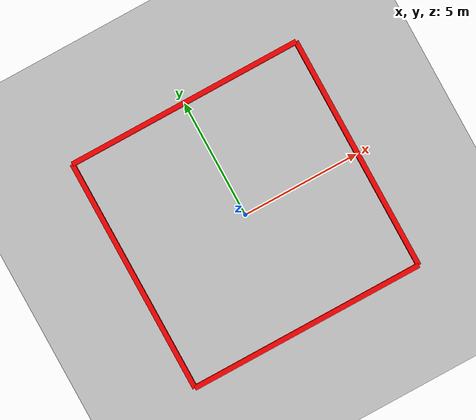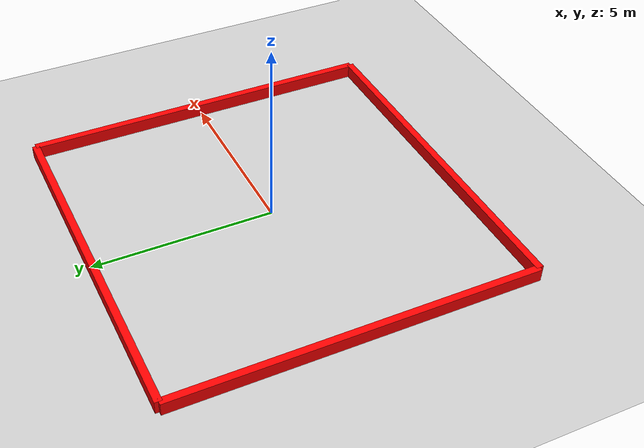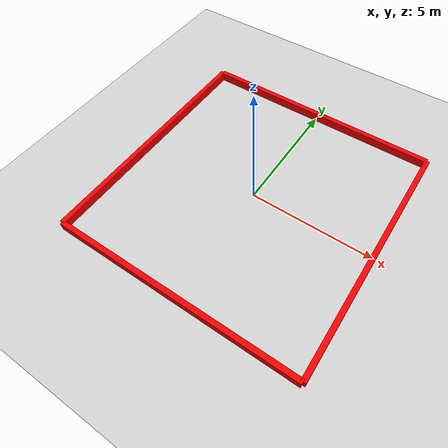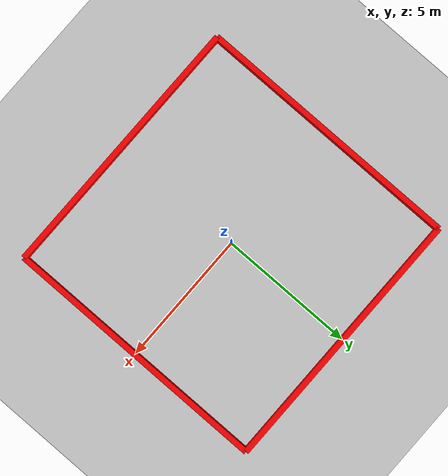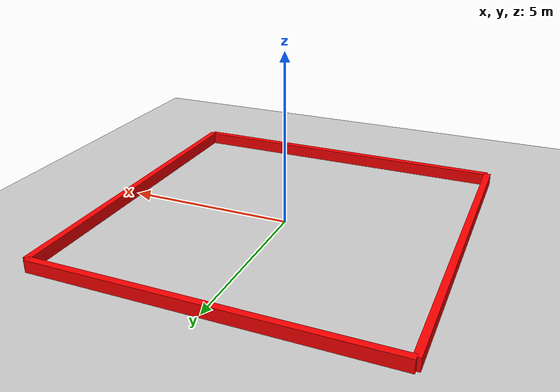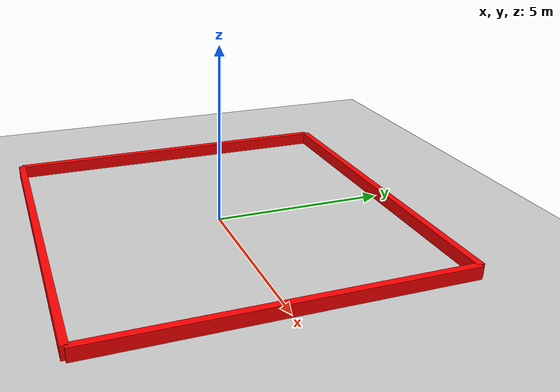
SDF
<?xml version="1.0" ?>
<sdf version="1.4">
  <world name="default">

    <!-- A global light source -->
    <include>
      <uri>model://sun</uri>
    </include>

    <!-- A ground plane -->
    <include>
      <uri>model://ground_plane</uri>
    </include>
<model name= "wall">
  	<pose>0.0 5.0 0.0 0 0 0</pose>

	<link name ="link">
<collision name ="collision">
	<geometry>
	<box>
		<size>10.0 0.2 0.7</size>
	</box>
	</geometry>
	</collision>
<visual name= "visual">
	<geometry>
	<box>
		<size>10.0 0.2 0.7</size>
	</box>
	</geometry>

<material>
<ambient>1 0 0 1</ambient>
<diffuse>1 0 0 1</diffuse>
<specular>0.1 0.1 0.1 1</specular>
<emissive>0 0 0 0</emissive>
</material>
</visual>
</link>
</model>

<model name= "wall1">
  	<pose>0.0 -5.0 0.0 0 0 0</pose>

	<link name ="link">
<collision name ="collision">
	<geometry>
	<box>
		<size>10.0 0.2 0.7</size>
	</box>
	</geometry>
	</collision>
<visual name= "visual">
	<geometry>
	<box>
		<size>10.0 0.2 0.7</size>
	</box>
	</geometry>

<material>
<ambient>1 0 0 1</ambient>
<diffuse>1 0 0 1</diffuse>
<specular>0.1 0.1 0.1 1</specular>
<emissive>0 0 0 0</emissive>
</material>
</visual>
</link>
</model>

<model name= "wall2">
  	<pose>-5.0 0.0 0.0 0 0 1.5708</pose>

	<link name ="link">
<collision name ="collision">
	<geometry>
	<box>
		<size>10.0 0.2 0.7</size>
	</box>
	</geometry>
	</collision>
<visual name= "visual">
	<geometry>
	<box>
		<size>10.0 0.2 0.7</size>
	</box>
	</geometry>

<material>
<ambient>1 0 0 1</ambient>
<diffuse>1 0 0 1</diffuse>
<specular>0.1 0.1 0.1 1</specular>
<emissive>0 0 0 0</emissive>
</material>
</visual>
</link>
</model>

<model name= "wall3">
  	<pose>5.0 0.0 0.0 0 0 1.5708</pose>

	<link name ="link">
<collision name ="collision">
	<geometry>
	<box>
		<size>10.0 0.2 0.7</size>
	</box>
	</geometry>
	</collision>
<visual name= "visual">
	<geometry>
	<box>
		<size>10.0 0.2 0.7</size>
	</box>
	</geometry>

<material>
<ambient>1 0 0 1</ambient>
<diffuse>1 0 0 1</diffuse>
<specular>0.1 0.1 0.1 1</specular>
<emissive>0 0 0 0</emissive>
</material>
</visual>
</link>
</model>

</world>
</sdf>
